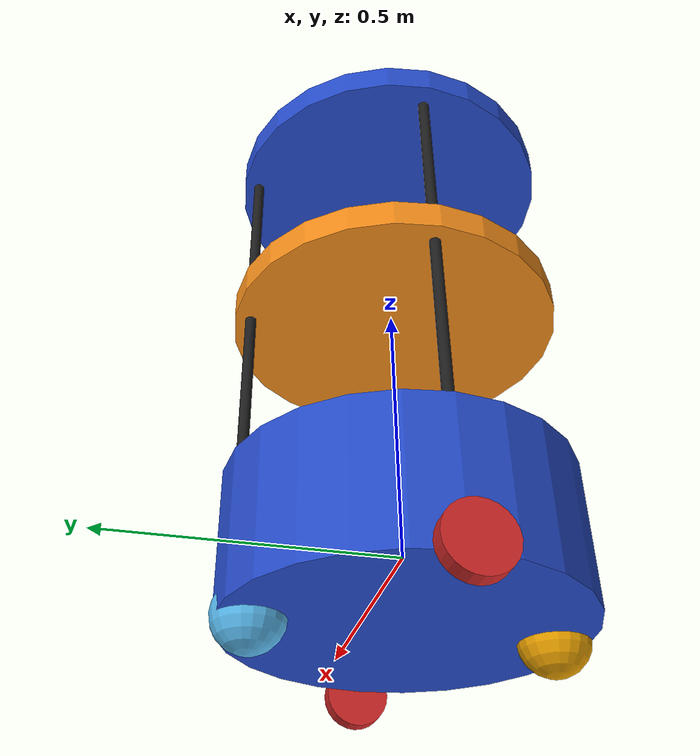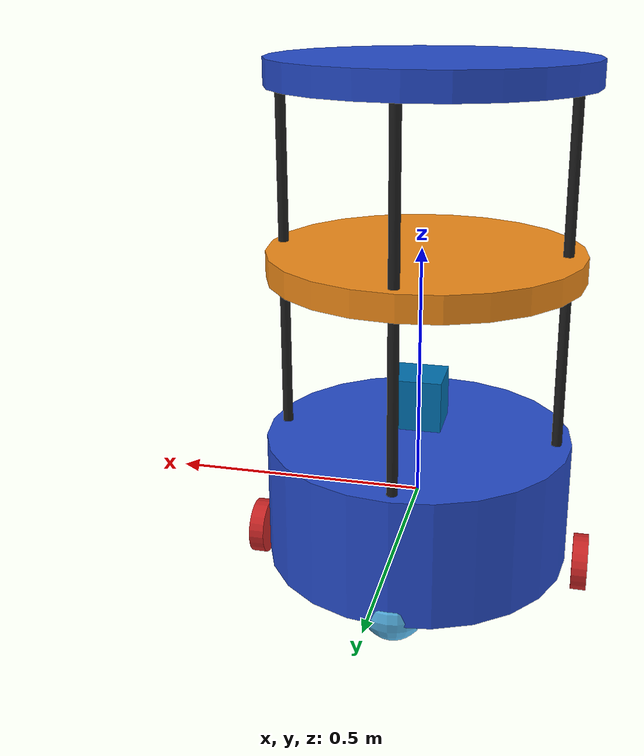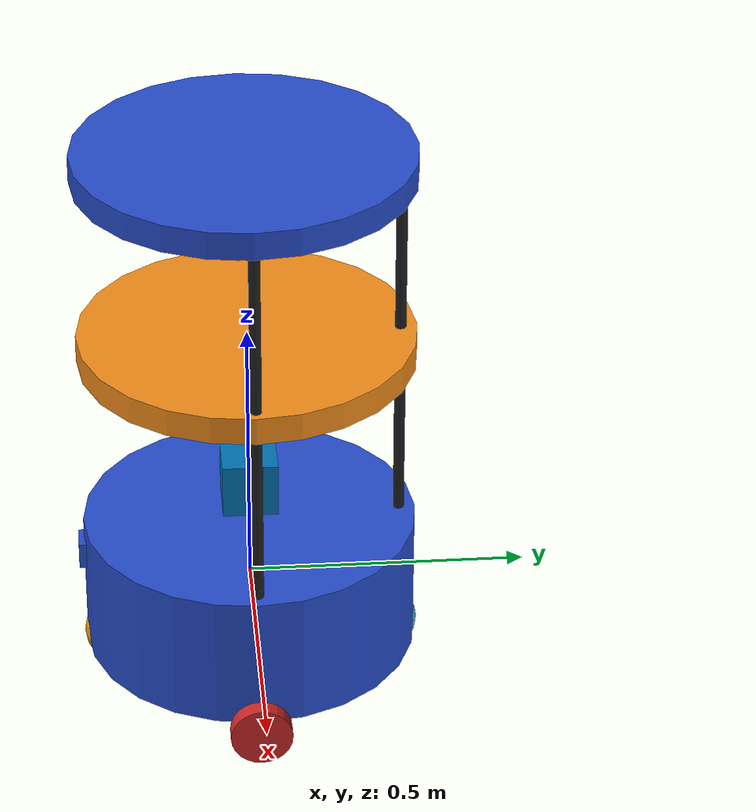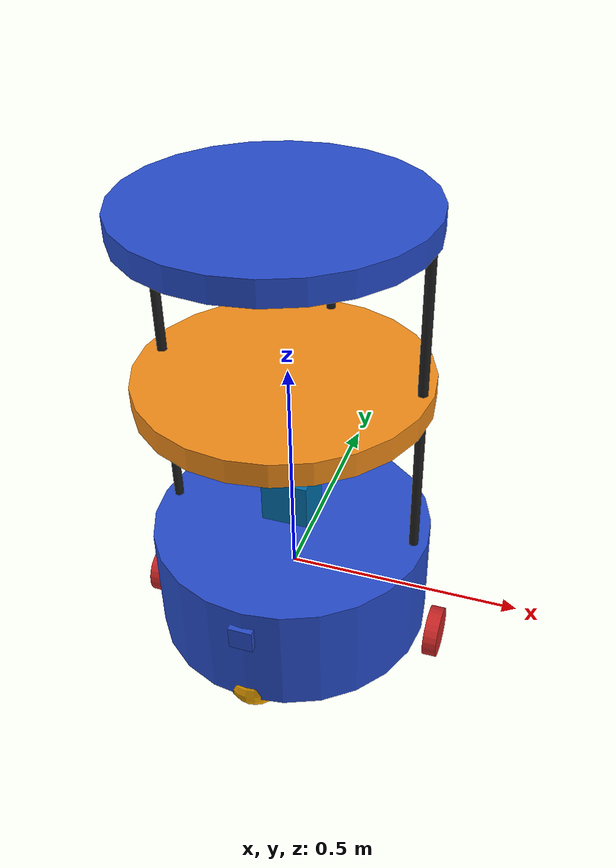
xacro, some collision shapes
<?xml version="1.0" ?>

<robot name="my_robot" xmlns:xacro="http://www.ros.org/wiki/xacro">
<!-- The root link robot_base has an inertia specified in the URDF,
 but KDL does not support a root link with an inertia.  As a workaround,
  adding an extra dummy link to URDF-->
  <link name="Dummy_link"></link>

    <xacro:include filename="$(find my_robot)/urdf/my_robot.gazebo" />

  <joint name="Dummy_link_robot_base" type="fixed">
    <origin xyz="0 0 0" rpy="0 0 0" />
    <parent link="Dummy_link"/>
    <child link="robot_base" />
  </joint>

  <link name="robot_base">
    <inertial>
      <mass value="5"/>
      <origin rpy="0  0  0" xyz="0  0  0"/>
      <inertia ixx="0.145833" ixy="0" ixz="0" iyy="0.145833" iyz="0" izz="0.125"/>
    </inertial>
    <collision name="robot_base_collision">
      <origin rpy="0  0  0" xyz="0  0  0"/>
      <geometry>
        <cylinder length="0.25" radius="0.3"/>
      </geometry>
    </collision>
    <visual name="my_robot_visual">
      <origin rpy="0  0  0" xyz="0  0  0"/>
      <geometry>
        <cylinder length="0.25" radius="0.3"/>
      </geometry>
    </visual>
  </link>

  <link name="robot_middle_plate">
    <inertial>
      <mass value="0.5"/>
      <origin rpy="0  0  0" xyz="0  0  0"/>
      <inertia ixx="0.145833" ixy="0" ixz="0" iyy="0.145833" iyz="0" izz="0.125"/>
    </inertial>
    <collision name="robot_middle_plate_collision">
      <origin rpy="0  0  0" xyz="0  0  0"/>
      <geometry>
        <cylinder length="0.05" radius="0.3"/>
      </geometry>
    </collision>
    <visual name="robot_middle_plate_visual">
      <origin rpy="0  0  0" xyz="0  0  0"/>
      <geometry>
        <cylinder length="0.05" radius="0.3"/>
      </geometry>
    </visual>
  </link>
  <joint name="robot_base_robot_top_plate" type="fixed">
    <parent link="robot_base"/>
    <child link="robot_top_plate"/>
    <origin rpy="0  0  0" xyz="-0.01262  0       0.82481"/>
    <axis xyz="0  0  0"/>
    <limit effort="0" lower="0" upper="0" velocity="0"/>
  </joint>

  <link name="robot_top_plate">
    <inertial>
      <mass value="0.3"/>
      <origin rpy="0  0  0" xyz="0  0  0"/>
      <inertia ixx="0.145833" ixy="0" ixz="0" iyy="0.145833" iyz="0" izz="0.125"/>
    </inertial>
    <collision name="robot_top_plate_collision">
      <origin rpy="0  0  0" xyz="0  0  0"/>
      <geometry>
        <cylinder length="0.05" radius="0.3"/>
      </geometry>
    </collision>
    <visual name="robot_top_plate_visual">
      <origin rpy="0  0  0" xyz="0  0  0"/>
      <geometry>
        <cylinder length="0.05" radius="0.3"/>
      </geometry>
    </visual>
  </link>
  <joint name="robot_bas_robot_middle_plate" type="fixed">
    <parent link="robot_base"/>
    <child link="robot_middle_plate"/>
    <origin rpy="0  0  0" xyz="-0.00756  0       0.47489"/>
    <axis xyz="0  0  0"/>
    <limit effort="0" lower="0" upper="0" velocity="0"/>
  </joint>

  <link name="hokuyo">

    <pose>0 0 0 0 0 0</pose>

    <inertial>
      <mass value="1e-6"/>
      <origin xyz="0.0 0 0" rpy=" 0 0 0"/>
      <inertia
          ixx="1e-6" ixy="0" ixz="0"
          iyy="1e-6" iyz="0"
          izz="1e-6"
      />
    </inertial>

    <collision name='hokuyo_collision'>
      <origin xyz="0.0 0 0" rpy=" 0 0 0"/>
      <geometry>
        <box size="0.1 0.1 0.1"/>
      </geometry>
      <mass value="1e-5"/>
    </collision>

    <visual name='hokuyo_visual'>
      <origin xyz="0.0 0 0" rpy=" 0 0 0"/>
      <geometry>
        <mesh filename="package://my_robot/meshes/hokuyo.dae"/>
      </geometry>
      <mass value="1e-5"/>
    </visual>

  </link>

  <joint type="fixed" name="hokuyo_joint">
    <origin xyz="0.0 0 0.2" rpy="0 0 0"/>
    <child link="hokuyo"/>
    <parent link="robot_base"/>
    <axis xyz="0 1 0" rpy="0 0 0"/>
  </joint>

  <link name="robot_left_support">
    <inertial>
      <mass value="0.1"/>
      <origin rpy="0  0  0" xyz="0  0  0"/>
      <inertia ixx="0.145833" ixy="0" ixz="0" iyy="0.145833" iyz="0" izz="0.125"/>
    </inertial>
    <collision name="robot_left_support_collision">
      <origin rpy="0  0  0" xyz="0  0  0"/>
      <geometry>
        <cylinder length="0.72" radius="0.01"/>
      </geometry>
    </collision>
    <visual name="robot_left_support_visual">
      <origin rpy="0  0  0" xyz="0  0  0"/>
      <geometry>
        <cylinder length="0.72" radius="0.01"/>
      </geometry>
    </visual>
  </link>
  <joint name="robot_base_robot_right_support" type="fixed">
    <parent link="robot_base"/>
    <child link="robot_right_support"/>
    <origin rpy="0  0  0" xyz="0.27   0     0.475"/>
    <axis xyz="0  0  0"/>
    <limit effort="0" lower="0" upper="0" velocity="0"/>
  </joint>

  <link name="robot_back_support">
    <inertial>
      <mass value="0.1"/>
      <origin rpy="0  0  0" xyz="0  0  0"/>
      <inertia ixx="0.145833" ixy="0" ixz="0" iyy="0.145833" iyz="0" izz="0.125"/>
    </inertial>
    <collision name="robot_back_support_collision">
      <origin rpy="0  0  0" xyz="0  0  0"/>
      <geometry>
        <cylinder length="0.72" radius="0.01"/>
      </geometry>
    </collision>
    <visual name="robot_back_support_visual">
      <origin rpy="0  0  0" xyz="0  0  0"/>
      <geometry>
        <cylinder length="0.72" radius="0.01"/>
      </geometry>
    </visual>
  </link>
   <joint name="robot_base_robot_back_support" type="fixed">
    <parent link="robot_base"/>
    <child link="robot_back_support"/>
    <origin rpy="0  0  0" xyz="0    0.27   0.475"/>
    <axis xyz="0  0  0"/>
    <limit effort="0" lower="0" upper="0" velocity="0"/>
  </joint>

  <link name="robot_right_support">
    <inertial>
      <mass value="0.1"/>
      <origin rpy="0  0  0" xyz="0  0  0"/>
      <inertia ixx="0.145833" ixy="0" ixz="0" iyy="0.145833" iyz="0" izz="0.125"/>
    </inertial>
    <collision name="robot_right_support_collision">
      <origin rpy="0  0  0" xyz="0  0  0"/>
      <geometry>
        <cylinder length="0.72" radius="0.01"/>
      </geometry>
    </collision>
    <visual name="robot_right_support_visual">
      <origin rpy="0  0  0" xyz="0  0  0"/>
      <geometry>
        <cylinder length="0.72" radius="0.01"/>
      </geometry>
    </visual>
  </link>
  <joint name="robot_base_robot_left_support" type="fixed">
    <parent link="robot_base"/>
    <child link="robot_left_support"/>
    <origin rpy="0  0  0" xyz="-0.27   0     0.475"/>
    <axis xyz="0  0  0"/>
    <limit effort="0" lower="0" upper="0" velocity="0"/>
  </joint>

  <link name="front_caster">
    <inertial>
      <mass value="0.1"/>
      <origin rpy="0  0  0" xyz="0  0  0"/>
      <inertia ixx="0.1" ixy="0" ixz="0" iyy="0.1" iyz="0" izz="0.1"/>
    </inertial>
    <collision name="front_caster_collision">
      <origin rpy="0  0  0" xyz="0  0  0"/>
      <geometry>
        <sphere radius="0.0605"/>
      </geometry>
    </collision>
    <visual name="front_caster_visual">
      <origin rpy="0  0  0" xyz="0  0  0"/>
      <geometry>
        <sphere radius="0.0605"/>
      </geometry>
    </visual>
  </link>
  <joint name="robot_base_front_caster" type="fixed">
    <parent link="robot_base"/>
    <child link="front_caster"/>
    <origin rpy="0  0  0" xyz="0     -0.245   -0.118"/>
    <axis xyz="0  0  0"/>
    <limit effort="0" lower="0" upper="0" velocity="0"/>
  </joint>

  <link name="back_caster">
    <inertial>
      <mass value="0.1"/>
      <origin rpy="0  0  0" xyz="0  0  0"/>
      <inertia ixx="0.1" ixy="0" ixz="0" iyy="0.1" iyz="0" izz="0.1"/>
    </inertial>
    <collision name="back_caster_collision">
      <origin rpy="0  0  0" xyz="0  0  0"/>
      <geometry>
        <sphere radius="0.0605"/>
      </geometry>
    </collision>
    <visual name="back_caster_visual">
      <origin rpy="0  0  0" xyz="0  0  0"/>
      <geometry>
        <sphere radius="0.0605"/>
      </geometry>
    </visual>
  </link>
  <joint name="robot_base_back_caster" type="fixed">
    <parent link="robot_base"/>
    <child link="back_caster"/>
    <origin rpy="0  0  0" xyz="0     0.245   -0.118"/>
    <axis xyz="0  0  0"/>
    <limit effort="0" lower="0" upper="0" velocity="0"/>
  </joint>

  <link name="left_wheel">
    <pose>0 0 0.1 0 0 0</pose>

    <inertial>
      <mass value="1"/>
      <origin xyz="0.0 0 0" rpy="0 -1.5707  0"/>
      <inertia
          ixx="0.1" ixy="0" ixz="0"
          iyy="0.1" iyz="0"
          izz="0.1"
      />
    </inertial>

    <collision name='left_wheel_collision'>
      <origin xyz="0 0 0" rpy="0 -1.5707  0"/>
      <geometry>
        <cylinder radius="0.055" length="0.03"/>
      </geometry>
    </collision>
    <visual name='left_wheel_visual'>
      <origin xyz="0 0 0" rpy="0 -1.5707  0"/>
      <geometry>
        <cylinder radius="0.055" length="0.03"/>
      </geometry>
    </visual>
  </link>
  <joint name="left_wheel_hinge" type="continuous">
    <parent link="robot_base"/>
    <child link="left_wheel"/>
    <origin rpy="0  0  0" xyz="0.33   0    -0.125"/>
 <axis xyz="1 0 0" rpy="0 0 0"/>
    <limit effort="10000" velocity="1000"/>
    <dynamics damping="1.0" friction="1.0"/>
  </joint>

  <link name="right_wheel">
    <pose>0 0 0.1 0 0 0</pose>

    <inertial>
      <mass value="1.0"/>
      <origin xyz="0.0 0 0" rpy="0 1.5707  0"/>
      <inertia
          ixx="0.1" ixy="0" ixz="0"
          iyy="0.1" iyz="0"
          izz="0.1"
      />
    </inertial>

    <collision name='right_wheel_collision'>
      <origin xyz="0 0 0" rpy="0 1.5707  0"/>
      <geometry>
        <cylinder radius="0.055" length="0.03"/>
      </geometry>
    </collision>
    <visual name='right_wheel_visual'>
      <origin xyz="0 0 0" rpy="0 1.5707  0"/>
      <geometry>
        <cylinder radius="0.055" length="0.03"/>
      </geometry>
    </visual>
  </link>
  <joint name="right_wheel_hinge" type="continuous">
    <parent link="robot_base"/>
    <child link="right_wheel"/>
    <origin rpy="0  0  0" xyz="-0.33   0    -0.125"/>
 <axis xyz="1 0 0" rpy="0 0 0"/>
    <limit effort="10000" velocity="1000"/>
    <dynamics damping="1.0" friction="1.0"/>
  </joint>

  <link name="camera">
    <pose>0 0 0 0 0 0</pose>
    <inertial>
      <mass value="0.1"/>
      <origin xyz="0.06 0.06 0.05"/>
      <inertia
          ixx="1e-6" ixy="0" ixz="0"
          iyy="1e-6" iyz="0"
          izz="1e-6"
      />
    </inertial>
    <collision name='camera_collision'>
      <origin xyz="0 0 0" rpy="0 0 0"/>
      <geometry>
        <box size="0.05 0.05 0.05"/>
      </geometry>
      <mass value="0.1"/>
    </collision>
    <visual name='camera_visual'>
      <origin xyz="0 0 0" rpy="0 0 0"/>
      <geometry>
        <box size="0.05 0.05 0.05"/>
      </geometry>
      <mass value="0.1"/>
    </visual>
  </link>
  <joint type="fixed" name="camera_joint">
    <origin xyz="0.0 -0.285 0.060" rpy="0 0 -1.5707"/>
    <child link="camera"/>
    <parent link="robot_base"/>
    <axis xyz="1 0 0" rpy="0 0 0"/>
  </joint>

  <link name="camera_link_optical">
  </link>

  <joint name="camera_optical_joint" type="fixed">
    <origin xyz="0.0 -0.285 0.060" rpy="-1.5707 0 -1.5707"/>
    <parent link="camera"/>
    <child link="camera_link_optical"/>
  </joint>

   <gazebo reference='left_wheel'>
       <material>Gazebo/Red</material>
   </gazebo>
   <gazebo reference='right_wheel'>
       <material>Gazebo/Red</material>
   </gazebo>
   <gazebo reference="robot_base">
       <material>Gazebo/Blue</material>
   </gazebo>
   <gazebo reference="robot_middle_plate">
       <material>Gazebo/Orange</material>
   </gazebo>
   <gazebo reference="robot_top_plate">
       <material>Gazebo/Blue</material>
   </gazebo>
   <gazebo reference="robot_left_support">
       <material>Gazebo/Black</material>
   </gazebo>
   <gazebo reference="robot_right_support">
       <material>Gazebo/Black</material>
   </gazebo>
   <gazebo reference="robot_back_support">
       <material>Gazebo/Black</material>
   </gazebo>
   <gazebo reference="camera">
       <material>Gazebo/Blue</material>
   </gazebo>
   <gazebo reference="laser_scanner">
       <material>Gazebo/Green</material>
   </gazebo>
</robot>
